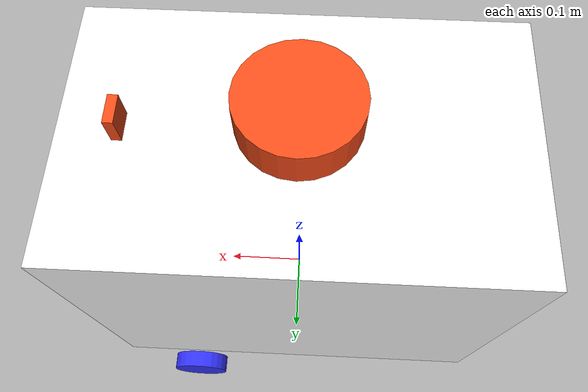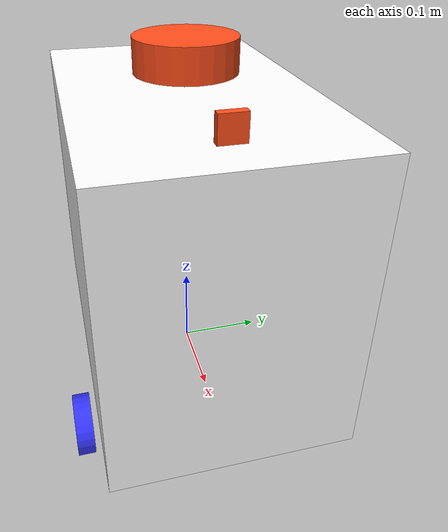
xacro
<?xml version="1.0"?>
<robot xmlns:xacro="http://www.ros.org/wiki/xacro"  name="robot">

    <xacro:arg name="use_ros2_control" default="true"/>
    <xacro:arg name="sim_mode" default="true"/>

    <xacro:include filename="robot_core.xacro" />

    <xacro:if value="$(arg use_ros2_control)">
        <xacro:include filename="ros2_control.xacro" />
    </xacro:if>
    <xacro:unless value="$(arg use_ros2_control)">
        <xacro:include filename="gazebo_control.xacro" />
    </xacro:unless>
    <xacro:include filename="lidar.xacro" />
    <xacro:include filename="camera.xacro" />

</robot>

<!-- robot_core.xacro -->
<robot xmlns:xacro="http://www.ros.org/wiki/xacro" >

    <xacro:include filename="inertial_macros.xacro" />

    <material name="white">
        <color rgba="1 1 1 1" />
    </material>

    <material name="orange">
        <color rgba="1 0.3 0.1 1" />
    </material>

    <material name="blue">
        <color rgba="0.2 0.2 1 1" />
    </material>

    <material name="black">
        <color rgba="0 0 0 1" />
    </material>

    <!-- Base Link -->

    <link name="base_link">

    </link>

    <joint name="base_footprint_joint" type="fixed">
        <parent link="base_link"/>
        <child link="base_footprint"/>
        <origin xyz="0 0 0" rpy="0 0 0"/>
    </joint>

    <link name="base_footprint">
    </link>

    <!-- Chassis Link -->

    <joint name="chassis_joint" type="fixed">
        <parent link="base_link"/>
        <child link="chassis"/>
        <origin xyz="-0.23 0 0"/>
    </joint>

    <link name="chassis">
        <visual>
            <origin xyz="0.23 0 0.18"/>
            <geometry>
                <box size="0.46 0.285  0.36"/>
            </geometry>
            <material name="white"/>
        </visual>
        <collision>
            <origin xyz="0.23 0 0.18"/>
            <geometry>
                <box size="0.46 0.285  0.36"/>
            </geometry>
        </collision>
        <xacro:inertial_box mass="8" x="0.46" y="0.285" z="0.36">
            <origin xyz="0.23 0 0.305" rpy="0 0 0"/>
        </xacro:inertial_box>
    </link>

    <gazebo reference="chassis">
        <material>Gazebo/White</material>
    </gazebo>

    <!-- Left Back wheel link-->

    <joint name="left_back_wheel_joint" type="continuous">
        <parent link="base_link"/>
        <child link="left_back_wheel"/>
        <origin xyz="0 0.16 0" rpy="-${pi/2} 0 0"/>
        <axis xyz="0 0 1"/>
    </joint>

    <link name="left_back_wheel">
        <xacro:inertial_cylinder mass="0.2" length="0.02" radius="0.035">
            <origin xyz="0 0 0" rpy="0 0 0"/>
        </xacro:inertial_cylinder>
    </link>

    <gazebo reference="left_back_wheel">
        <material>Gazebo/Blue</material>
    </gazebo>

    <!-- Left front wheel link-->

    <joint name="left_front_wheel_joint" type="continuous">
        <parent link="base_link"/>
        <child link="left_front_wheel"/>
        <origin xyz="0.13 0.16 0" rpy="-${pi/2} 0 0"/>
        <axis xyz="0 0 1"/>
    </joint>

    <link name="left_front_wheel">
        <visual>
            <geometry>
                <cylinder radius="0.035" length="0.02"/>
            </geometry>
            <material name="blue"/>
        </visual>
        <collision>
            <geometry>
                <sphere radius="0.035"/>
            </geometry>
        </collision>
        <xacro:inertial_cylinder mass="0.2" length="0.02" radius="0.035">
            <origin xyz="0 0 0" rpy="0 0 0"/>
        </xacro:inertial_cylinder>
    </link>

    <gazebo reference="left_front_wheel">
        <material>Gazebo/Blue</material>
    </gazebo>

    <!-- Right Back wheel link-->

    <joint name="right_back_wheel_joint" type="continuous">
        <parent link="base_link"/>
        <child link="right_back_wheel"/>
        <origin xyz="0 -0.16 0" rpy="${pi/2} 0 0"/>
        <axis xyz="0 0 -1"/>
    </joint>

    <link name="right_back_wheel">
        <xacro:inertial_cylinder mass="0.2" length="0.02" radius="0.035">
            <origin xyz="0 0 0" rpy="0 0 0"/>
        </xacro:inertial_cylinder>
    </link>

    <gazebo reference="right_back_wheel">
        <material>Gazebo/Blue</material>
    </gazebo>

    <!-- Right front wheel link-->

    <joint name="right_front_wheel_joint" type="continuous">
        <parent link="base_link"/>
        <child link="right_front_wheel"/>
        <origin xyz="0.13 -0.16 0" rpy="${pi/2} 0 0"/>
        <axis xyz="0 0 -1"/>
    </joint>

    <link name="right_front_wheel">
        <visual>
            <geometry>
                <cylinder radius="0.035" length="0.02"/>
            </geometry>
            <material name="blue"/>
        </visual>
        <collision>
            <geometry>
                <sphere radius="0.035"/>
            </geometry>
        </collision>
        <xacro:inertial_cylinder mass="0.2" length="0.02" radius="0.035">
            <origin xyz="0 0 0" rpy="0 0 0"/>
        </xacro:inertial_cylinder>
    </link>

    <gazebo reference="right_front_wheel">
        <material>Gazebo/Blue</material>
    </gazebo>

    <!--Left Caster wheel Link-->

    <joint name="left_caster_wheel_joint" type="fixed">
        <parent link="chassis"/>
        <child link="left_caster_wheel"/>
        <origin xyz="0.13 0.09 0"/>
    </joint>

    <link name="left_caster_wheel">
        <visual>
            <geometry>
                <sphere radius="0.035"/>
            </geometry>
            <material name="black"/>
        </visual>
        <collision>
            <geometry>
                <sphere radius="0.035"/>
            </geometry>
        </collision>
        <xacro:inertial_sphere mass="0.2" radius="0.035">
            <origin xyz="0 0 0" rpy="0 0 0"/>
        </xacro:inertial_sphere>
    </link>

    <gazebo reference="left_caster_wheel">
        <material>Gazebo/Black</material>
        <mu1 value="0.001"/>
        <mu2 value="0.001"/>
    </gazebo>

    <!--Right Caster wheel Link-->

    <joint name="right_caster_wheel_joint" type="fixed">
        <parent link="chassis"/>
        <child link="right_caster_wheel"/>
        <origin xyz="0.13 -0.09 0"/>
    </joint>

    <link name="right_caster_wheel">
        <visual>
            <geometry>
                <sphere radius="0.035"/>
            </geometry>
            <material name="black"/>
        </visual>
        <collision>
            <geometry>
                <sphere radius="0.035"/>
            </geometry>
        </collision>
        <xacro:inertial_sphere mass="0.2" radius="0.035">
            <origin xyz="0 0 0" rpy="0 0 0"/>
        </xacro:inertial_sphere>
    </link>

    <gazebo reference="right_caster_wheel">
        <material>Gazebo/Black</material>
        <mu1 value="0.001"/>
        <mu2 value="0.001"/>
    </gazebo>

</robot>

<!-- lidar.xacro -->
<robot xmlns:xacro="http://www.ros.org/wiki/xacro" >

    <joint name="laser_joint" type="fixed">
        <parent link="chassis"/>
        <child link="laser_frame"/>
        <origin xyz="0.23 0 0.40" rpy="0 0 0"/>
    </joint>

    <link name="laser_frame">
        <visual>
            <geometry>
                <cylinder radius="0.06" length="0.04"/>
            </geometry>
            <material name="orange"/>
        </visual>
        <collision>
            <geometry>
                <cylinder radius="0.06" length="0.04"/>
            </geometry>
        </collision>
        <xacro:inertial_cylinder mass="0.2" length="0.04" radius="0.06">
            <origin xyz="0 0 0" rpy="0 0 0"/>
        </xacro:inertial_cylinder>
    </link>

    <gazebo reference="laser_frame">
        <material>Gazebo/Orange</material>

        <sensor name="laser" type="ray">
            <pose> 0 0 0 0 0 0 </pose>
            <visualize>false</visualize>
            <update_rate>10</update_rate>
            <ray>
                <scan>
                    <horizontal>
                        <samples>360</samples>
                        <min_angle>-3.14</min_angle>
                        <max_angle>3.14</max_angle>
                    </horizontal>
                </scan>
                <range>
                    <min>0.3</min>
                    <max>12</max>
                </range>
            </ray>
            <plugin name="laser_controller" filename="libgazebo_ros_ray_sensor.so">
                <ros>
                    <argument>~/out:=scan</argument>
                </ros>
                <output_type>sensor_msgs/LaserScan</output_type>
                <frame_name>laser_frame</frame_name>
            </plugin>
        </sensor>
    </gazebo>

</robot>

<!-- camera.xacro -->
<robot xmlns:xacro="http://www.ros.org/wiki/xacro" >

    <joint name="camera_joint" type="fixed">
        <parent link="chassis"/>
        <child link="camera_link"/>
        <origin xyz="0.4 0 0.375" rpy="0 0 0"/>
    </joint>

    <link name="camera_link">
        <visual>
            <geometry>
                <box size="0.010 0.03 0.03"/>
            </geometry>
            <material name="orange"/>
        </visual>
    </link>

    <joint name="camera_optical_joint" type="fixed">
        <parent link="camera_link"/>
        <child link="camera_link_optical"/>
        <origin xyz="0 0 0" rpy="${-pi/2} 0 ${-pi/2}"/>
    </joint>

    <link name="camera_link_optical"></link>

    <gazebo reference="camera_link">
        <material>Gazebo/Orange</material>

        <sensor name="camera" type="camera">
            <pose> 0 0 0 0 0 0 </pose>
            <visualize>true</visualize>
            <update_rate>10</update_rate>
            <camera>
                <horizontal_fov>1.089</horizontal_fov>
                <image>
                    <format>R8G8B8</format>
                    <width>640</width>
                    <height>480</height>
                </image>
                <clip>
                    <near>0.05</near>
                    <far>8.0</far>
                </clip>
            </camera>
            <plugin name="camera_controller" filename="libgazebo_ros_camera.so">
                <frame_name>camera_link_optical</frame_name>
            </plugin>
        </sensor>
    </gazebo>

</robot>
